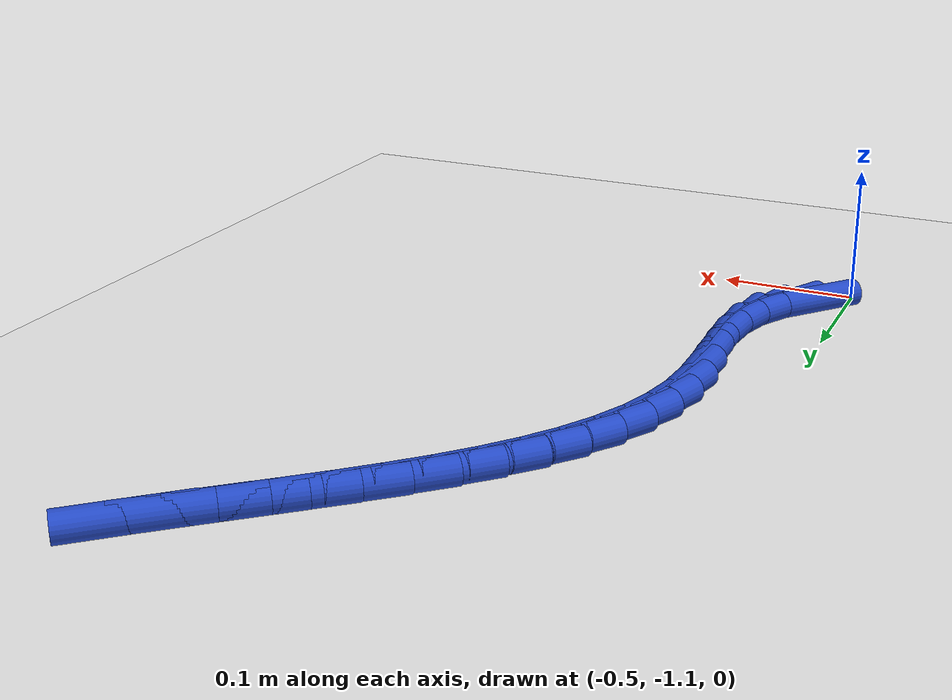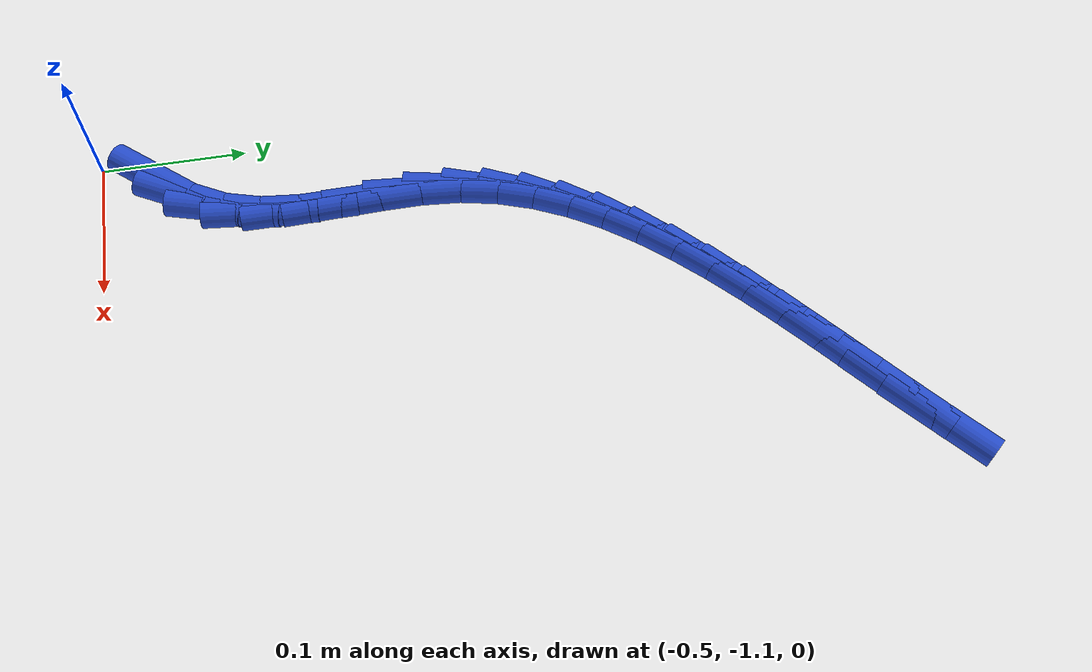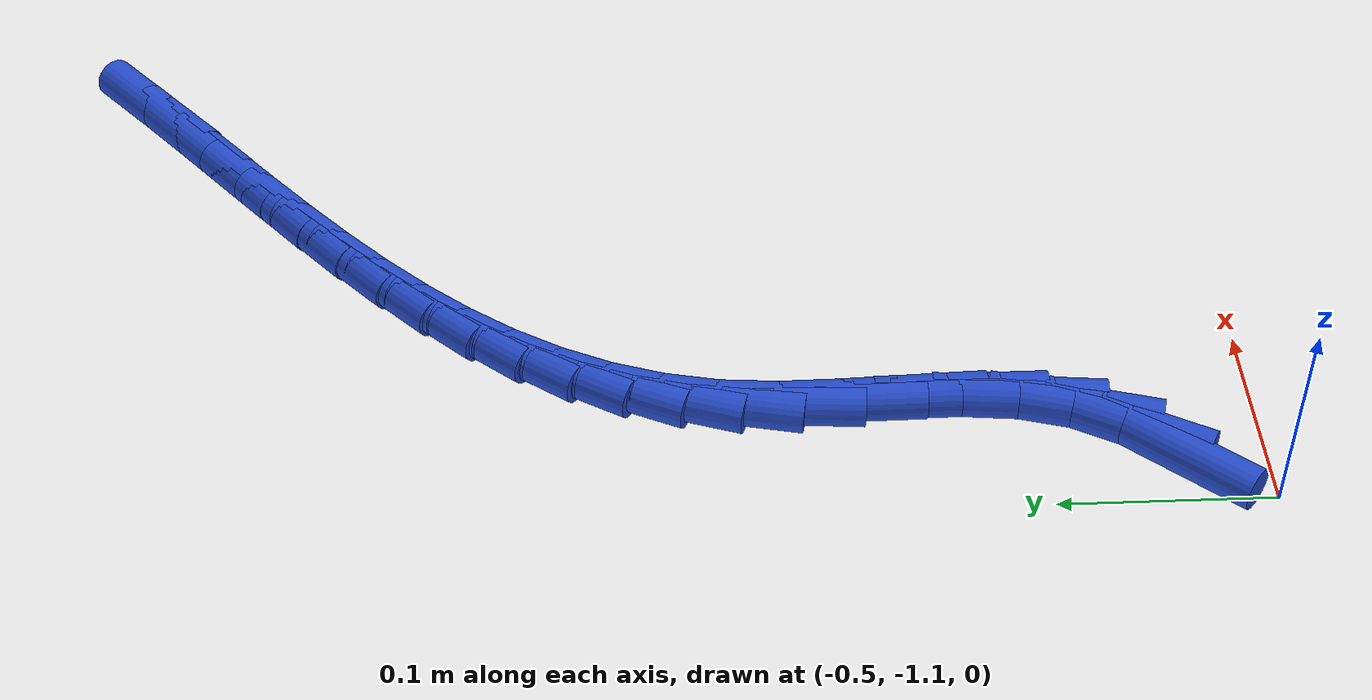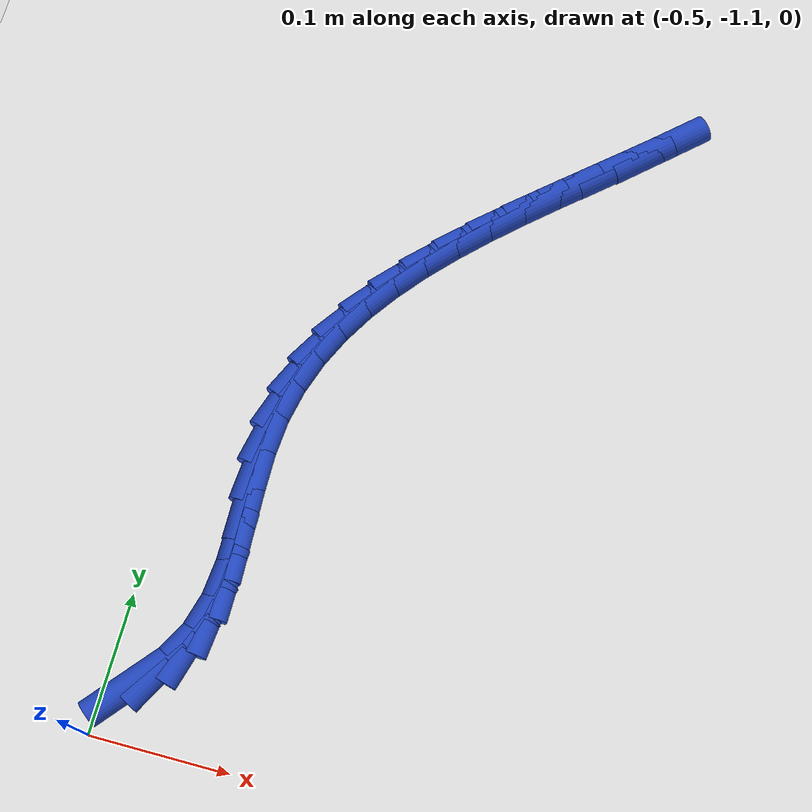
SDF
<sdf version="1.6">
 <world name="default">
  <model name="ground_plane">
   <static>1</static>
   <link name="link">
    <collision name="collision">
     <geometry><plane><normal>0 0 1</normal><size>100 100</size></plane></geometry>
     <surface><friction><ode><mu>100</mu><mu2>50</mu2></ode></friction></surface>
    </collision>
    <visual name="visual">
     <cast_shadows>0</cast_shadows>
     <geometry><plane><normal>0 0 1</normal><size>100 100</size></plane></geometry>
     <material>
      <script><uri>file://media/materials/scripts/gazebo.material</uri><name>Gazebo/WhiteGlow</name></script>
     </material>
    </visual>
   </link>
  </model>
  <model name="line">
   <link name="link_216">
    <pose>-0.4779174202935357 -1.0571028594798633 0.01 0 1.57 0.873735044414482</pose>
    <collision name="collision">
     <geometry><cylinder><radius>0.01</radius><length>0.08</length></cylinder></geometry>
    </collision>
    <visual name="visual">
     <material>
      <script><name>Gazebo/Blue</name><uri>file://media/materials/scripts/gazebo.material</uri></script>
     </material>
     <geometry><cylinder><radius>0.01</radius><length>0.08</length></cylinder></geometry>
    </visual>
   </link>
   <link name="link_217">
    <pose>-0.4614862775846299 -1.0374783634331597 0.01 0 1.57 1.0784971554420346</pose>
    <collision name="collision">
     <geometry><cylinder><radius>0.01</radius><length>0.08</length></cylinder></geometry>
    </collision>
    <visual name="visual">
     <material>
      <script><name>Gazebo/Blue</name><uri>file://media/materials/scripts/gazebo.material</uri></script>
     </material>
     <geometry><cylinder><radius>0.01</radius><length>0.08</length></cylinder></geometry>
    </visual>
   </link>
   <link name="link_218">
    <pose>-0.4496236217166677 -1.015360781818018 0.01 0 1.57 1.2995312125260683</pose>
    <collision name="collision">
     <geometry><cylinder><radius>0.01</radius><length>0.08</length></cylinder></geometry>
    </collision>
    <visual name="visual">
     <material>
      <script><name>Gazebo/Blue</name><uri>file://media/materials/scripts/gazebo.material</uri></script>
     </material>
     <geometry><cylinder><radius>0.01</radius><length>0.08</length></cylinder></geometry>
    </visual>
   </link>
   <link name="link_219">
    <pose>-0.4427919664091598 -0.9907971407768769 0.01 0 1.57 1.4761626180931793</pose>
    <collision name="collision">
     <geometry><cylinder><radius>0.01</radius><length>0.08</length></cylinder></geometry>
    </collision>
    <visual name="visual">
     <material>
      <script><name>Gazebo/Blue</name><uri>file://media/materials/scripts/gazebo.material</uri></script>
     </material>
     <geometry><cylinder><radius>0.01</radius><length>0.08</length></cylinder></geometry>
    </visual>
   </link>
   <link name="link_220">
    <pose>-0.4402696931241546 -0.964223741281634 0.01 0 1.57 -1.5665225731364696</pose>
    <collision name="collision">
     <geometry><cylinder><radius>0.01</radius><length>0.08</length></cylinder></geometry>
    </collision>
    <visual name="visual">
     <material>
      <script><name>Gazebo/Blue</name><uri>file://media/materials/scripts/gazebo.material</uri></script>
     </material>
     <geometry><cylinder><radius>0.01</radius><length>0.08</length></cylinder></geometry>
    </visual>
   </link>
   <link name="link_221">
    <pose>-0.4403886567444303 -0.9363880480026733 0.01 0 1.57 -1.5332159480945677</pose>
    <collision name="collision">
     <geometry><cylinder><radius>0.01</radius><length>0.08</length></cylinder></geometry>
    </collision>
    <visual name="visual">
     <material>
      <script><name>Gazebo/Blue</name><uri>file://media/materials/scripts/gazebo.material</uri></script>
     </material>
     <geometry><cylinder><radius>0.01</radius><length>0.08</length></cylinder></geometry>
    </visual>
   </link>
   <link name="link_222">
    <pose>-0.44145425494260815 -0.9080462232249427 0.01 0 1.57 -1.5594899319820617</pose>
    <collision name="collision">
     <geometry><cylinder><radius>0.01</radius><length>0.08</length></cylinder></geometry>
    </collision>
    <visual name="visual">
     <material>
      <script><name>Gazebo/Blue</name><uri>file://media/materials/scripts/gazebo.material</uri></script>
     </material>
     <geometry><cylinder><radius>0.01</radius><length>0.08</length></cylinder></geometry>
    </visual>
   </link>
   <link name="link_223">
    <pose>-0.4417718853913094 -0.8799544292333915 0.01 0 1.57 1.4937649987224422</pose>
    <collision name="collision">
     <geometry><cylinder><radius>0.01</radius><length>0.08</length></cylinder></geometry>
    </collision>
    <visual name="visual">
     <material>
      <script><name>Gazebo/Blue</name><uri>file://media/materials/scripts/gazebo.material</uri></script>
     </material>
     <geometry><cylinder><radius>0.01</radius><length>0.08</length></cylinder></geometry>
    </visual>
   </link>
   <link name="link_224">
    <pose>-0.43968016204491145 -0.8528539695382846 0.01 0 1.57 1.3694470815454702</pose>
    <collision name="collision">
     <geometry><cylinder><radius>0.01</radius><length>0.08</length></cylinder></geometry>
    </collision>
    <visual name="visual">
     <material>
      <script><name>Gazebo/Blue</name><uri>file://media/materials/scripts/gazebo.material</uri></script>
     </material>
     <geometry><cylinder><radius>0.01</radius><length>0.08</length></cylinder></geometry>
    </visual>
   </link>
   <link name="link_225">
    <pose>-0.4344198344591066 -0.8270825916548973 0.01 0 1.57 1.2483140407324707</pose>
    <collision name="collision">
     <geometry><cylinder><radius>0.01</radius><length>0.08</length></cylinder></geometry>
    </collision>
    <visual name="visual">
     <material>
      <script><name>Gazebo/Blue</name><uri>file://media/materials/scripts/gazebo.material</uri></script>
     </material>
     <geometry><cylinder><radius>0.01</radius><length>0.08</length></cylinder></geometry>
    </visual>
   </link>
   <link name="link_226">
    <pose>-0.4262179546113781 -0.8025368364167085 0.01 0 1.57 1.1368054163386887</pose>
    <collision name="collision">
     <geometry><cylinder><radius>0.01</radius><length>0.08</length></cylinder></geometry>
    </collision>
    <visual name="visual">
     <material>
      <script><name>Gazebo/Blue</name><uri>file://media/materials/scripts/gazebo.material</uri></script>
     </material>
     <geometry><cylinder><radius>0.01</radius><length>0.08</length></cylinder></geometry>
    </visual>
   </link>
   <link name="link_227">
    <pose>-0.4153516661210559 -0.7790908369589112 0.01 0 1.57 1.0379270044999345</pose>
    <collision name="collision">
     <geometry><cylinder><radius>0.01</radius><length>0.08</length></cylinder></geometry>
    </collision>
    <visual name="visual">
     <material>
      <script><name>Gazebo/Blue</name><uri>file://media/materials/scripts/gazebo.material</uri></script>
     </material>
     <geometry><cylinder><radius>0.01</radius><length>0.08</length></cylinder></geometry>
    </visual>
   </link>
   <link name="link_228">
    <pose>-0.40209811260747014 -0.7566187264167 0.01 0 1.57 0.9530654629699213</pose>
    <collision name="collision">
     <geometry><cylinder><radius>0.01</radius><length>0.08</length></cylinder></geometry>
    </collision>
    <visual name="visual">
     <material>
      <script><name>Gazebo/Blue</name><uri>file://media/materials/scripts/gazebo.material</uri></script>
     </material>
     <geometry><cylinder><radius>0.01</radius><length>0.08</length></cylinder></geometry>
    </visual>
   </link>
   <link name="link_229">
    <pose>-0.3867344376899502 -0.7349946379252673 0.01 0 1.57 0.8823483301022859</pose>
    <collision name="collision">
     <geometry><cylinder><radius>0.01</radius><length>0.08</length></cylinder></geometry>
    </collision>
    <visual name="visual">
     <material>
      <script><name>Gazebo/Blue</name><uri>file://media/materials/scripts/gazebo.material</uri></script>
     </material>
     <geometry><cylinder><radius>0.01</radius><length>0.08</length></cylinder></geometry>
    </visual>
   </link>
   <link name="link_230">
    <pose>-0.36953778498782724 -0.7140927046198087 0.01 0 1.57 0.8251425177879939</pose>
    <collision name="collision">
     <geometry><cylinder><radius>0.01</radius><length>0.08</length></cylinder></geometry>
    </collision>
    <visual name="visual">
     <material>
      <script><name>Gazebo/Blue</name><uri>file://media/materials/scripts/gazebo.material</uri></script>
     </material>
     <geometry><cylinder><radius>0.01</radius><length>0.08</length></cylinder></geometry>
    </visual>
   </link>
   <link name="link_231">
    <pose>-0.35078529812043086 -0.6937870596355167 0.01 0 1.57 0.7804829389795316</pose>
    <collision name="collision">
     <geometry><cylinder><radius>0.01</radius><length>0.08</length></cylinder></geometry>
    </collision>
    <visual name="visual">
     <material>
      <script><name>Gazebo/Blue</name><uri>file://media/materials/scripts/gazebo.material</uri></script>
     </material>
     <geometry><cylinder><radius>0.01</radius><length>0.08</length></cylinder></geometry>
    </visual>
   </link>
   <link name="link_232">
    <pose>-0.3307541207070912 -0.6739518361075854 0.01 0 1.57 0.7473630534930463</pose>
    <collision name="collision">
     <geometry><cylinder><radius>0.01</radius><length>0.08</length></cylinder></geometry>
    </collision>
    <visual name="visual">
     <material>
      <script><name>Gazebo/Blue</name><uri>file://media/materials/scripts/gazebo.material</uri></script>
     </material>
     <geometry><cylinder><radius>0.01</radius><length>0.08</length></cylinder></geometry>
    </visual>
   </link>
   <link name="link_233">
    <pose>-0.30972139636713814 -0.6544611671712082 0.01 0 1.57 0.7249017490116142</pose>
    <collision name="collision">
     <geometry><cylinder><radius>0.01</radius><length>0.08</length></cylinder></geometry>
    </collision>
    <visual name="visual">
     <material>
      <script><name>Gazebo/Blue</name><uri>file://media/materials/scripts/gazebo.material</uri></script>
     </material>
     <geometry><cylinder><radius>0.01</radius><length>0.08</length></cylinder></geometry>
    </visual>
   </link>
   <link name="link_234">
    <pose>-0.28796426871990194 -0.6351891859615791 0.01 0 1.57 0.7124257986356552</pose>
    <collision name="collision">
     <geometry><cylinder><radius>0.01</radius><length>0.08</length></cylinder></geometry>
    </collision>
    <visual name="visual">
     <material>
      <script><name>Gazebo/Blue</name><uri>file://media/materials/scripts/gazebo.material</uri></script>
     </material>
     <geometry><cylinder><radius>0.01</radius><length>0.08</length></cylinder></geometry>
    </visual>
   </link>
   <link name="link_235">
    <pose>-0.2657598813847125 -0.6160100256138917 0.01 0 1.57 0.7095031701163784</pose>
    <collision name="collision">
     <geometry><cylinder><radius>0.01</radius><length>0.08</length></cylinder></geometry>
    </collision>
    <visual name="visual">
     <material>
      <script><name>Gazebo/Blue</name><uri>file://media/materials/scripts/gazebo.material</uri></script>
     </material>
     <geometry><cylinder><radius>0.01</radius><length>0.08</length></cylinder></geometry>
    </visual>
   </link>
   <link name="link_236">
    <pose>-0.24338537798089935 -0.5967978192633392 0.01 0 1.57 0.7159506041960332</pose>
    <collision name="collision">
     <geometry><cylinder><radius>0.01</radius><length>0.08</length></cylinder></geometry>
    </collision>
    <visual name="visual">
     <material>
      <script><name>Gazebo/Blue</name><uri>file://media/materials/scripts/gazebo.material</uri></script>
     </material>
     <geometry><cylinder><radius>0.01</radius><length>0.08</length></cylinder></geometry>
    </visual>
   </link>
   <link name="link_237">
    <pose>-0.22111790212779375 -0.5774267000451163 0.01 0 1.57 0.7318276950861565</pose>
    <collision name="collision">
     <geometry><cylinder><radius>0.01</radius><length>0.08</length></cylinder></geometry>
    </collision>
    <visual name="visual">
     <material>
      <script><name>Gazebo/Blue</name><uri>file://media/materials/scripts/gazebo.material</uri></script>
     </material>
     <geometry><cylinder><radius>0.01</radius><length>0.08</length></cylinder></geometry>
    </visual>
   </link>
  </model>
 </world>
</sdf>
